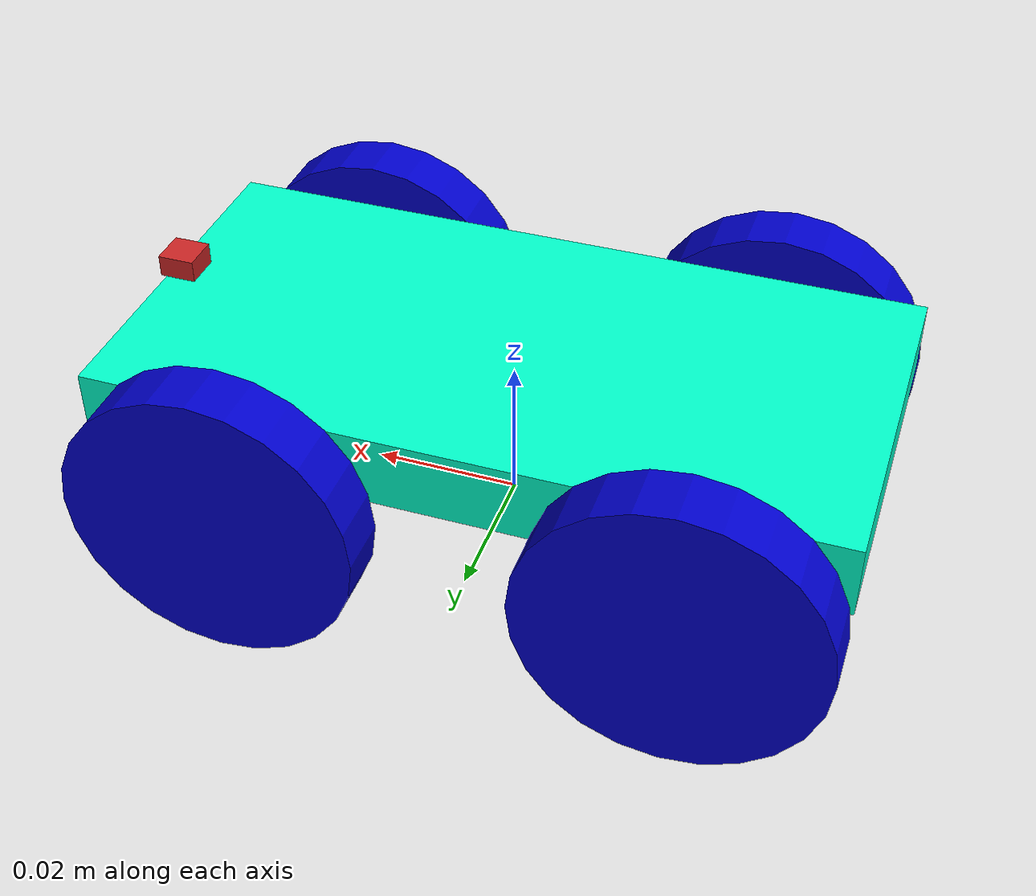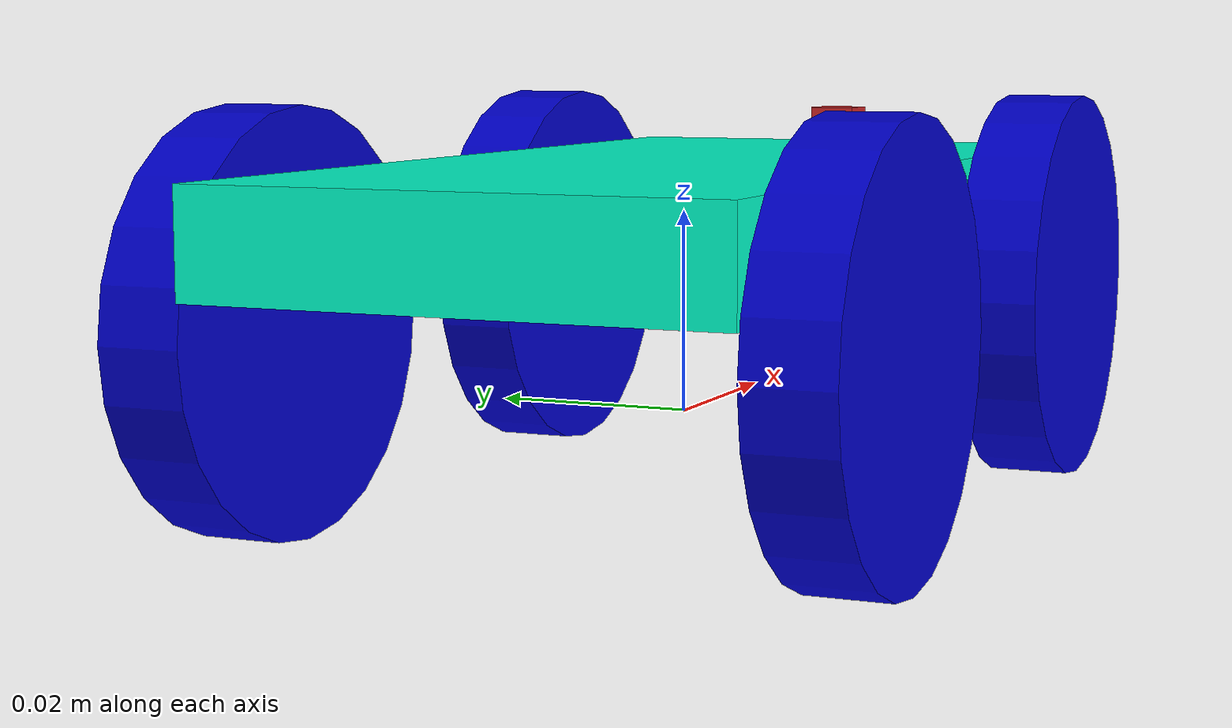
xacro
<?xml version="1.0"?>
<robot name="car" xmlns:xacro="http://www.ros.org/wiki/xacro">
<xacro:property name="radius" value="0.02"/>
<xacro:property name="length" value="0.008"/>
<xacro:property name="mass" value="10"/>
<xacro:property name="box_x" value="0.1"/>
<xacro:property name="box_y" value="0.05"/>
<xacro:property name="box_z" value="0.01"/>

   <material name="blue">
      <color rgba="0 1 0.8 1"/>
   </material>

	<link name="dummy">
   </link>

	<link name="base_link">
		<visual>
			<geometry>
	         <box size="${box_x} ${box_y} ${box_z}"/>
         </geometry>
			<origin xyz="0 0 0.02"/>
         <material name="blue"/>
      </visual>
      <collision>
         <origin xyz="0 0 0.02" rpy="0 0 0"/>
	      <surface>
       	 <friction>
         	 <ode>
         	   <mu>100000.0</mu>
         	   <mu2>100000.0</mu2>
         	 </ode>
        	 </friction>
         </surface>
      	<geometry>
         	<box size="0.1 0.05 0.01"/>
         </geometry>
      </collision>
		<inertial>
			<mass value="${mass}"/>
		<inertia ixx="${mass / 12.0 * (box_x*box_x + box_z*box_z)}" ixy="0.0" ixz="0.0" iyy="${mass / 12.0 * (box_y*box_y + box_z*box_z)}" iyz="0.0" izz="${mass / 12.0 * (box_y*box_y + box_x*box_x)}"/>
		</inertial>
	</link>
	<joint name="dummy_joint" type="fixed">
   	<parent link="dummy"/>
   	<child link="base_link"/>
   </joint>

<xacro:macro name="wheel" params="prefix mid joint_x joint_y">
	<link name="${prefix}_${mid}_wheel">
		<visual>
			<origin rpy="1.57 0 0" xyz="0 0 0"/>
			<geometry>
				<cylinder length="${length}" radius="${radius}"/>
			</geometry>
 			<material name="blue">
         	<color rgba="0 0 .8 1"/>
         </material>
		</visual>
		<collision>
			<surface>
       	 <friction>
         	 <ode>
         	   <mu>100000.0</mu>
         	   <mu2>100000.0</mu2>
         	 </ode>
        	 </friction>
			</surface>
			<origin xyz="0 0 0" rpy="${pi/2} 0 0"/>
			<geometry>
				<cylinder length="${length}" radius="${radius}"/>
			</geometry>
		</collision>
		<inertial>
			<mass value="${mass}"/>
		<inertia  ixx="${mass*(3*radius*radius+length*length)/12}" ixy = "0" ixz = "0" iyy="${mass*(3*radius*radius+length*length)/12}" iyz = "0" izz="${mass*radius*radius/2}"/>
		</inertial>
	</link>

	<joint name="${prefix}_${mid}" type="continuous">
		<axis xyz="0 1 0" rpy="0 0 0" />
		<parent link="base_link"/>
		<child link="${prefix}_${mid}_wheel"/>
		<limit effort="10000" velocity="100"/>
      <joint_properties damping="1.0" friction="10000.0" />
		<origin xyz="${joint_x*((box_x/2)-radius)} ${joint_y*((box_y/2)+(length/2))} ${0.011}"/>
	</joint>
</xacro:macro>

<xacro:wheel prefix="left" mid="front" joint_x="1" joint_y="-1"/>
<xacro:wheel prefix="left" mid="back" joint_x="-1" joint_y="-1"/>
<xacro:wheel prefix="right" mid="front" joint_x="1" joint_y="1"/>
<xacro:wheel prefix="right" mid="back" joint_x="-1" joint_y="1"/>

	<link name="cam">
		<visual>
			<origin xyz="0 0 0.0075" rpy="0 0 0"/>
			<geometry>
				<box size="0.005 0.005 0.003"/>
			</geometry>
			<material name="red"/>
		</visual>
		<collision>
			<origin xyz="0 0 0.0075" rpy="0 0 0"/>
			<geometry>
				<box size="0.005 0.005 0.003"/>
			</geometry>
			<material name="red"/>
		</collision>
		<inertial>
			<mass value="2"/>
			<origin xyz="0 0 0.0075" rpy="0 0 0"/>
			<inertia ixx="1e-6" ixy="0" ixz="0" iyy="1e-6" iyz="0" izz="1e-6"/>
		</inertial>
	</link>

	<joint name="cammera_j" type="fixed">
		<axis xyz="0 0 1"/>
		<origin xyz="${box_x/2-0.0025} 0 0.02"/>
		<parent link="base_link"/>
		<child link="cam"/>
	</joint>

<gazebo>
  		<plugin name="skid_steer_drive_controller" filename="libgazebo_ros_skid_steer_drive.so">
   	 <updateRate>20.0</updateRate>
  		 <alwaysOn>true</alwaysOn>
   	 <robotNamespace>/</robotNamespace>
   	 <leftFrontJoint>left_front</leftFrontJoint>
   	 <rightFrontJoint>right_front</rightFrontJoint>
   	 <leftRearJoint>left_back</leftRearJoint>
   	 <rightRearJoint>right_back</rightRearJoint>
   	 <wheelSeparation>${box_y+0.06}</wheelSeparation>
   	 <wheelDiameter>${2*radius}</wheelDiameter>
   	 <robotBaseFrame>dummy</robotBaseFrame>
     	 <torque>20</torque>
    	 <commandTopic>cmd_vel</commandTopic>
    	 <odometryTopic>odom</odometryTopic>
    	 <topicName>cmd_vel</topicName>
    	 <broadcastTF>1</broadcastTF>
    	 <odometryFrame>odom</odometryFrame>
	 	 <covariance_x>0.0001</covariance_x>
	 	 <covariance_y>0.0001</covariance_y>
	 	 <covariance_yaw>0.01</covariance_yaw>
  	   </plugin>
</gazebo>

  <gazebo reference="cam">
    <sensor type="camera" name="cam">
      <update_rate>30.0</update_rate>
      <camera name="head">
        <horizontal_fov>1.3962634</horizontal_fov>
        <image>
          <width>800</width>
          <height>800</height>
          <format>R8G8B8</format>
        </image>
        <clip>
          <near>0.02</near>
          <far>300</far>
        </clip>
        <noise>
          <type>gaussian</type>
          <mean>0.0</mean>
          <stddev>0.007</stddev>
        </noise>
      </camera>
      <plugin name="camera_controller" filename="libgazebo_ros_camera.so">
        <alwaysOn>true</alwaysOn>
        <updateRate>0.0</updateRate>
        <cameraName>cam</cameraName>
        <imageTopicName>image</imageTopicName>
        <cameraInfoTopicName>camera_info</cameraInfoTopicName>
        <frameName>cam</frameName>
        <hackBaseline>0.07</hackBaseline>
        <distortionK1>0.0</distortionK1>
        <distortionK2>0.0</distortionK2>
        <distortionK3>0.0</distortionK3>
        <distortionT1>0.0</distortionT1>
        <distortionT2>0.0</distortionT2>
      </plugin>
    </sensor>
  </gazebo>

</robot>
